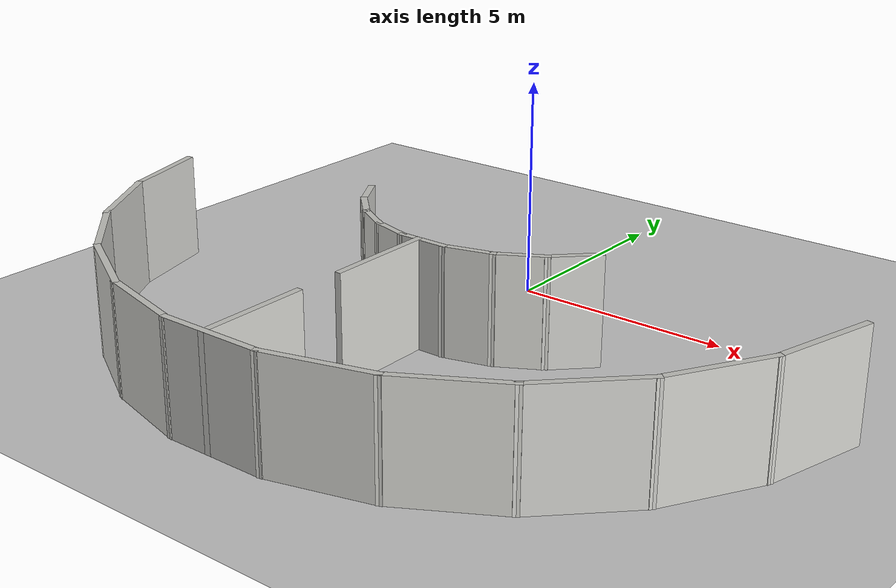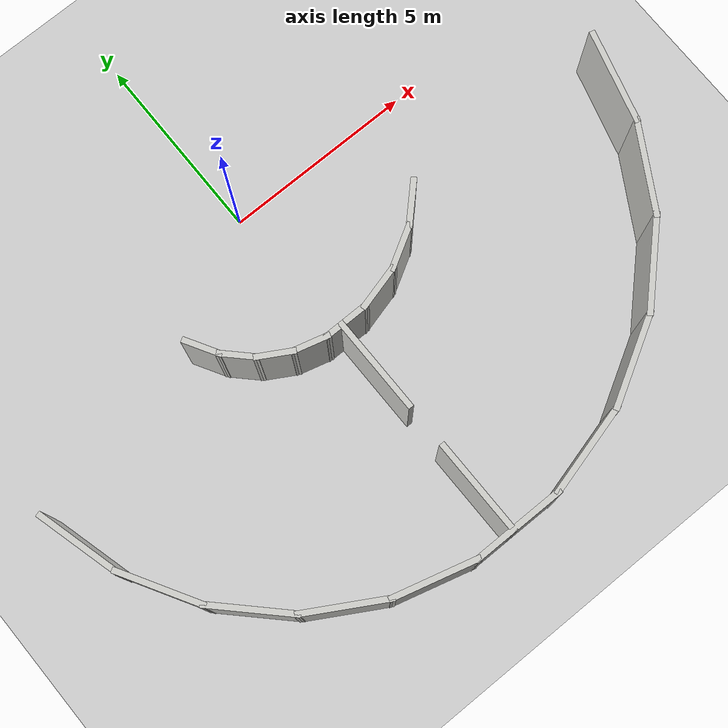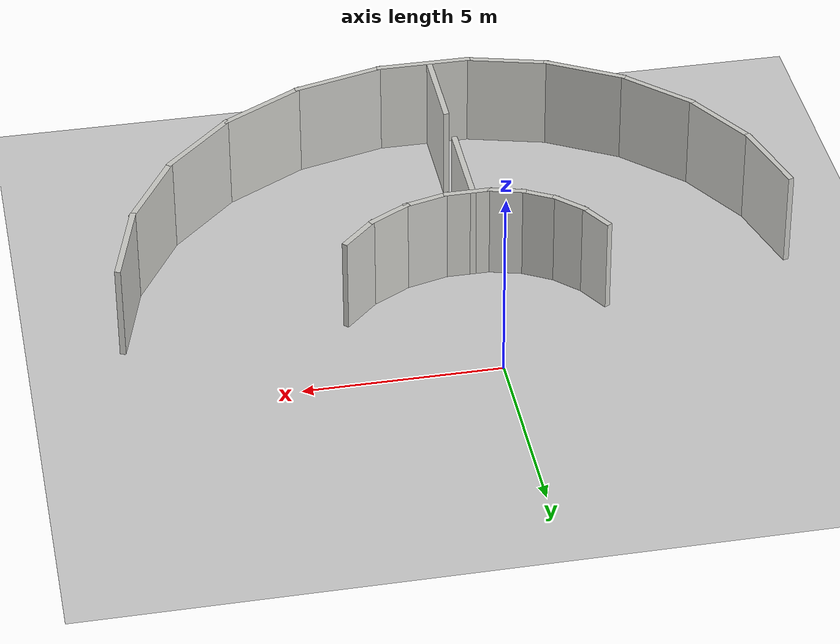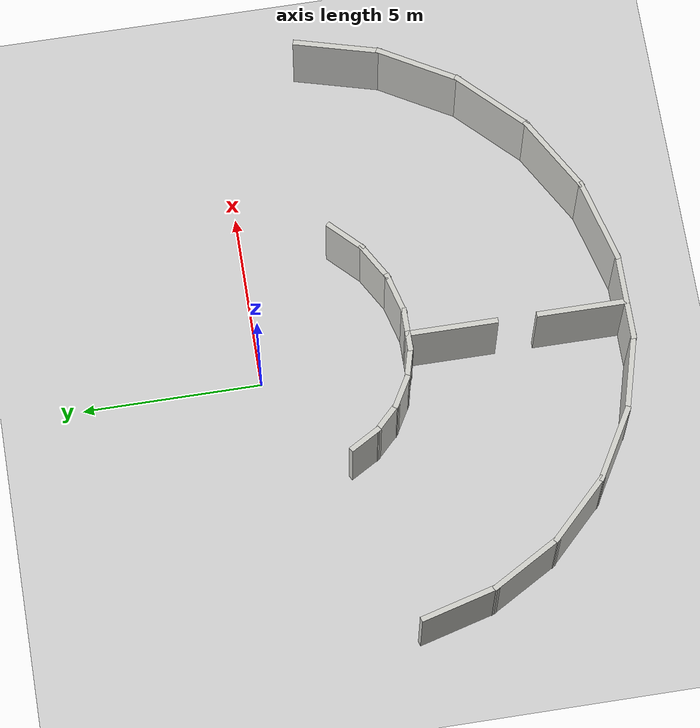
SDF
<sdf version="1.6">
 <world name="default">
  <model name="ground_plane">
   <static>1</static>
   <link name="link">
    <collision name="collision">
     <geometry><plane><normal>0 0 1</normal><size>100 100</size></plane></geometry>
     <surface>
      <contact><collide_bitmask>65535</collide_bitmask></contact>
      <friction><ode><mu>100</mu><mu2>50</mu2></ode></friction>
     </surface>
    </collision>
    <visual name="visual">
     <cast_shadows>0</cast_shadows>
     <geometry><plane><normal>0 0 1</normal><size>100 100</size></plane></geometry>
     <material>
      <script><uri>file://media/materials/scripts/gazebo.material</uri><name>Gazebo/Grey</name></script>
     </material>
    </visual>
   </link>
  </model>
  <model name="floor_plan">
   <link name="Wall_15">
    <pose>-8.24485 -3.54285 0 0 0 -1.30904</pose>
    <visual name="Wall_15_Visual">
     <pose>0 0 1.25 0 -0 0</pose>
     <geometry><box><size>2.25 0.15 2.5</size></box></geometry>
     <material>
      <script><uri>file://media/materials/scripts/gazebo.material</uri><name>Gazebo/CeilingTiled</name></script>
      <ambient>1 1 1 1</ambient>
      <shader type="pixel"/>
     </material>
     <meta><layer>0</layer></meta>
    </visual>
    <collision name="Wall_15_Collision">
     <pose>0 0 1.25 0 -0 0</pose>
     <geometry><box><size>2.25 0.15 2.5</size></box></geometry>
     <surface>
      <friction>
       <ode><mu>1</mu><mu2>1</mu2><fdir1>0 0 0</fdir1><slip1>0</slip1><slip2>0</slip2></ode>
       <torsional>
        <coefficient>1</coefficient>
        <patch_radius>0</patch_radius>
        <surface_radius>0</surface_radius>
        <use_patch_radius>1</use_patch_radius>
        <ode><slip>0</slip></ode>
       </torsional>
      </friction>
      <bounce><restitution_coefficient>0</restitution_coefficient><threshold>1e+06</threshold></bounce>
      <contact>
       <collide_without_contact>0</collide_without_contact>
       <collide_without_contact_bitmask>1</collide_without_contact_bitmask>
       <collide_bitmask>1</collide_bitmask>
       <ode>
        <soft_cfm>0</soft_cfm>
        <soft_erp>0.2</soft_erp>
        <kp>1e+13</kp>
        <kd>1</kd>
        <max_vel>0.01</max_vel>
        <min_depth>0</min_depth>
       </ode>
       <bullet>
        <split_impulse>1</split_impulse>
        <split_impulse_penetration_threshold>-0.01</split_impulse_penetration_threshold>
        <soft_cfm>0</soft_cfm>
        <soft_erp>0.2</soft_erp>
        <kp>1e+13</kp>
        <kd>1</kd>
       </bullet>
      </contact>
     </surface>
    </collision>
   </link>
   <link name="Wall_16">
    <pose>-7.44813 -5.46643 0 0 0 -1.0472</pose>
    <visual name="Wall_16_Visual">
     <pose>0 0 1.25 0 -0 0</pose>
     <geometry><box><size>2.25 0.15 2.5</size></box></geometry>
     <material>
      <script><uri>file://media/materials/scripts/gazebo.material</uri><name>Gazebo/CeilingTiled</name></script>
      <ambient>1 1 1 1</ambient>
      <shader type="pixel"/>
     </material>
     <meta><layer>0</layer></meta>
    </visual>
    <collision name="Wall_16_Collision">
     <pose>0 0 1.25 0 -0 0</pose>
     <geometry><box><size>2.25 0.15 2.5</size></box></geometry>
     <surface>
      <friction>
       <ode><mu>1</mu><mu2>1</mu2><fdir1>0 0 0</fdir1><slip1>0</slip1><slip2>0</slip2></ode>
       <torsional>
        <coefficient>1</coefficient>
        <patch_radius>0</patch_radius>
        <surface_radius>0</surface_radius>
        <use_patch_radius>1</use_patch_radius>
        <ode><slip>0</slip></ode>
       </torsional>
      </friction>
      <bounce><restitution_coefficient>0</restitution_coefficient><threshold>1e+06</threshold></bounce>
      <contact>
       <collide_without_contact>0</collide_without_contact>
       <collide_without_contact_bitmask>1</collide_without_contact_bitmask>
       <collide_bitmask>1</collide_bitmask>
       <ode>
        <soft_cfm>0</soft_cfm>
        <soft_erp>0.2</soft_erp>
        <kp>1e+13</kp>
        <kd>1</kd>
        <max_vel>0.01</max_vel>
        <min_depth>0</min_depth>
       </ode>
       <bullet>
        <split_impulse>1</split_impulse>
        <split_impulse_penetration_threshold>-0.01</split_impulse_penetration_threshold>
        <soft_cfm>0</soft_cfm>
        <soft_erp>0.2</soft_erp>
        <kp>1e+13</kp>
        <kd>1</kd>
       </bullet>
      </contact>
     </surface>
    </collision>
   </link>
   <link name="Wall_18">
    <pose>-6.18067 -7.11822 0 0 0 -0.785398</pose>
    <visual name="Wall_18_Visual">
     <pose>0 0 1.25 0 -0 0</pose>
     <geometry><box><size>2.25 0.15 2.5</size></box></geometry>
     <material>
      <script><uri>file://media/materials/scripts/gazebo.material</uri><name>Gazebo/CeilingTiled</name></script>
      <ambient>1 1 1 1</ambient>
      <shader type="pixel"/>
     </material>
     <meta><layer>0</layer></meta>
    </visual>
    <collision name="Wall_18_Collision">
     <pose>0 0 1.25 0 -0 0</pose>
     <geometry><box><size>2.25 0.15 2.5</size></box></geometry>
     <surface>
      <friction>
       <ode><mu>1</mu><mu2>1</mu2><fdir1>0 0 0</fdir1><slip1>0</slip1><slip2>0</slip2></ode>
       <torsional>
        <coefficient>1</coefficient>
        <patch_radius>0</patch_radius>
        <surface_radius>0</surface_radius>
        <use_patch_radius>1</use_patch_radius>
        <ode><slip>0</slip></ode>
       </torsional>
      </friction>
      <bounce><restitution_coefficient>0</restitution_coefficient><threshold>1e+06</threshold></bounce>
      <contact>
       <collide_without_contact>0</collide_without_contact>
       <collide_without_contact_bitmask>1</collide_without_contact_bitmask>
       <collide_bitmask>1</collide_bitmask>
       <ode>
        <soft_cfm>0</soft_cfm>
        <soft_erp>0.2</soft_erp>
        <kp>1e+13</kp>
        <kd>1</kd>
        <max_vel>0.01</max_vel>
        <min_depth>0</min_depth>
       </ode>
       <bullet>
        <split_impulse>1</split_impulse>
        <split_impulse_penetration_threshold>-0.01</split_impulse_penetration_threshold>
        <soft_cfm>0</soft_cfm>
        <soft_erp>0.2</soft_erp>
        <kp>1e+13</kp>
        <kd>1</kd>
       </bullet>
      </contact>
     </surface>
    </collision>
   </link>
   <link name="Wall_20">
    <pose>-4.52888 -8.38569 0 0 0 -0.523599</pose>
    <visual name="Wall_20_Visual">
     <pose>0 0 1.25 0 -0 0</pose>
     <geometry><box><size>2.25 0.15 2.5</size></box></geometry>
     <material>
      <script><uri>file://media/materials/scripts/gazebo.material</uri><name>Gazebo/CeilingTiled</name></script>
      <ambient>1 1 1 1</ambient>
      <shader type="pixel"/>
     </material>
     <meta><layer>0</layer></meta>
    </visual>
    <collision name="Wall_20_Collision">
     <pose>0 0 1.25 0 -0 0</pose>
     <geometry><box><size>2.25 0.15 2.5</size></box></geometry>
     <surface>
      <friction>
       <ode><mu>1</mu><mu2>1</mu2><fdir1>0 0 0</fdir1><slip1>0</slip1><slip2>0</slip2></ode>
       <torsional>
        <coefficient>1</coefficient>
        <patch_radius>0</patch_radius>
        <surface_radius>0</surface_radius>
        <use_patch_radius>1</use_patch_radius>
        <ode><slip>0</slip></ode>
       </torsional>
      </friction>
      <bounce><restitution_coefficient>0</restitution_coefficient><threshold>1e+06</threshold></bounce>
      <contact>
       <collide_without_contact>0</collide_without_contact>
       <collide_without_contact_bitmask>1</collide_without_contact_bitmask>
       <collide_bitmask>1</collide_bitmask>
       <ode>
        <soft_cfm>0</soft_cfm>
        <soft_erp>0.2</soft_erp>
        <kp>1e+13</kp>
        <kd>1</kd>
        <max_vel>0.01</max_vel>
        <min_depth>0</min_depth>
       </ode>
       <bullet>
        <split_impulse>1</split_impulse>
        <split_impulse_penetration_threshold>-0.01</split_impulse_penetration_threshold>
        <soft_cfm>0</soft_cfm>
        <soft_erp>0.2</soft_erp>
        <kp>1e+13</kp>
        <kd>1</kd>
       </bullet>
      </contact>
     </surface>
    </collision>
   </link>
   <link name="Wall_21">
    <pose>-2.60557 -9.18264 0 0 0 -0.262035</pose>
    <visual name="Wall_21_Visual">
     <pose>0 0 1.25 0 -0 0</pose>
     <geometry><box><size>2.25 0.15 2.5</size></box></geometry>
     <material>
      <script><uri>file://media/materials/scripts/gazebo.material</uri><name>Gazebo/CeilingTiled</name></script>
      <ambient>1 1 1 1</ambient>
      <shader type="pixel"/>
     </material>
     <meta><layer>0</layer></meta>
    </visual>
    <collision name="Wall_21_Collision">
     <pose>0 0 1.25 0 -0 0</pose>
     <geometry><box><size>2.25 0.15 2.5</size></box></geometry>
     <surface>
      <friction>
       <ode><mu>1</mu><mu2>1</mu2><fdir1>0 0 0</fdir1><slip1>0</slip1><slip2>0</slip2></ode>
       <torsional>
        <coefficient>1</coefficient>
        <patch_radius>0</patch_radius>
        <surface_radius>0</surface_radius>
        <use_patch_radius>1</use_patch_radius>
        <ode><slip>0</slip></ode>
       </torsional>
      </friction>
      <bounce><restitution_coefficient>0</restitution_coefficient><threshold>1e+06</threshold></bounce>
      <contact>
       <collide_without_contact>0</collide_without_contact>
       <collide_without_contact_bitmask>1</collide_without_contact_bitmask>
       <collide_bitmask>1</collide_bitmask>
       <ode>
        <soft_cfm>0</soft_cfm>
        <soft_erp>0.2</soft_erp>
        <kp>1e+13</kp>
        <kd>1</kd>
        <max_vel>0.01</max_vel>
        <min_depth>0</min_depth>
       </ode>
       <bullet>
        <split_impulse>1</split_impulse>
        <split_impulse_penetration_threshold>-0.01</split_impulse_penetration_threshold>
        <soft_cfm>0</soft_cfm>
        <soft_erp>0.2</soft_erp>
        <kp>1e+13</kp>
        <kd>1</kd>
       </bullet>
      </contact>
     </surface>
    </collision>
   </link>
   <link name="Wall_22">
    <pose>-0.416578 -9.45459 0 0 -0 0</pose>
    <visual name="Wall_22_Visual">
     <pose>0 0 1.25 0 -0 0</pose>
     <geometry><box><size>2.5 0.15 2.5</size></box></geometry>
     <material>
      <script><uri>file://media/materials/scripts/gazebo.material</uri><name>Gazebo/CeilingTiled</name></script>
      <ambient>1 1 1 1</ambient>
      <shader type="pixel"/>
     </material>
     <meta><layer>0</layer></meta>
    </visual>
    <collision name="Wall_22_Collision">
     <pose>0 0 1.25 0 -0 0</pose>
     <geometry><box><size>2.5 0.15 2.5</size></box></geometry>
     <surface>
      <friction>
       <ode><mu>1</mu><mu2>1</mu2><fdir1>0 0 0</fdir1><slip1>0</slip1><slip2>0</slip2></ode>
       <torsional>
        <coefficient>1</coefficient>
        <patch_radius>0</patch_radius>
        <surface_radius>0</surface_radius>
        <use_patch_radius>1</use_patch_radius>
        <ode><slip>0</slip></ode>
       </torsional>
      </friction>
      <bounce><restitution_coefficient>0</restitution_coefficient><threshold>1e+06</threshold></bounce>
      <contact>
       <collide_without_contact>0</collide_without_contact>
       <collide_without_contact_bitmask>1</collide_without_contact_bitmask>
       <collide_bitmask>1</collide_bitmask>
       <ode>
        <soft_cfm>0</soft_cfm>
        <soft_erp>0.2</soft_erp>
        <kp>1e+13</kp>
        <kd>1</kd>
        <max_vel>0.01</max_vel>
        <min_depth>0</min_depth>
       </ode>
       <bullet>
        <split_impulse>1</split_impulse>
        <split_impulse_penetration_threshold>-0.01</split_impulse_penetration_threshold>
        <soft_cfm>0</soft_cfm>
        <soft_erp>0.2</soft_erp>
        <kp>1e+13</kp>
        <kd>1</kd>
       </bullet>
      </contact>
     </surface>
    </collision>
   </link>
   <link name="Wall_23">
    <pose>1.89362 -9.15029 0 0 -0 0.261906</pose>
    <visual name="Wall_23_Visual">
     <pose>0 0 1.25 0 -0 0</pose>
     <geometry><box><size>2.5 0.15 2.5</size></box></geometry>
     <material>
      <script><uri>file://media/materials/scripts/gazebo.material</uri><name>Gazebo/CeilingTiled</name></script>
      <ambient>1 1 1 1</ambient>
      <shader type="pixel"/>
     </material>
     <meta><layer>0</layer></meta>
    </visual>
    <collision name="Wall_23_Collision">
     <pose>0 0 1.25 0 -0 0</pose>
     <geometry><box><size>2.5 0.15 2.5</size></box></geometry>
     <surface>
      <friction>
       <ode><mu>1</mu><mu2>1</mu2><fdir1>0 0 0</fdir1><slip1>0</slip1><slip2>0</slip2></ode>
       <torsional>
        <coefficient>1</coefficient>
        <patch_radius>0</patch_radius>
        <surface_radius>0</surface_radius>
        <use_patch_radius>1</use_patch_radius>
        <ode><slip>0</slip></ode>
       </torsional>
      </friction>
      <bounce><restitution_coefficient>0</restitution_coefficient><threshold>1e+06</threshold></bounce>
      <contact>
       <collide_without_contact>0</collide_without_contact>
       <collide_without_contact_bitmask>1</collide_without_contact_bitmask>
       <collide_bitmask>1</collide_bitmask>
       <ode>
        <soft_cfm>0</soft_cfm>
        <soft_erp>0.2</soft_erp>
        <kp>1e+13</kp>
        <kd>1</kd>
        <max_vel>0.01</max_vel>
        <min_depth>0</min_depth>
       </ode>
       <bullet>
        <split_impulse>1</split_impulse>
        <split_impulse_penetration_threshold>-0.01</split_impulse_penetration_threshold>
        <soft_cfm>0</soft_cfm>
        <soft_erp>0.2</soft_erp>
        <kp>1e+13</kp>
        <kd>1</kd>
       </bullet>
      </contact>
     </surface>
    </collision>
   </link>
   <link name="Wall_24">
    <pose>4.0464 -8.25848 0 0 -0 0.523599</pose>
    <visual name="Wall_24_Visual">
     <pose>0 0 1.25 0 -0 0</pose>
     <geometry><box><size>2.5 0.15 2.5</size></box></geometry>
     <material>
      <script><uri>file://media/materials/scripts/gazebo.material</uri><name>Gazebo/CeilingTiled</name></script>
      <ambient>1 1 1 1</ambient>
      <shader type="pixel"/>
     </material>
     <meta><layer>0</layer></meta>
    </visual>
    <collision name="Wall_24_Collision">
     <pose>0 0 1.25 0 -0 0</pose>
     <geometry><box><size>2.5 0.15 2.5</size></box></geometry>
     <surface>
      <friction>
       <ode><mu>1</mu><mu2>1</mu2><fdir1>0 0 0</fdir1><slip1>0</slip1><slip2>0</slip2></ode>
       <torsional>
        <coefficient>1</coefficient>
        <patch_radius>0</patch_radius>
        <surface_radius>0</surface_radius>
        <use_patch_radius>1</use_patch_radius>
        <ode><slip>0</slip></ode>
       </torsional>
      </friction>
      <bounce><restitution_coefficient>0</restitution_coefficient><threshold>1e+06</threshold></bounce>
      <contact>
       <collide_without_contact>0</collide_without_contact>
       <collide_without_contact_bitmask>1</collide_without_contact_bitmask>
       <collide_bitmask>1</collide_bitmask>
       <ode>
        <soft_cfm>0</soft_cfm>
        <soft_erp>0.2</soft_erp>
        <kp>1e+13</kp>
        <kd>1</kd>
        <max_vel>0.01</max_vel>
        <min_depth>0</min_depth>
       </ode>
       <bullet>
        <split_impulse>1</split_impulse>
        <split_impulse_penetration_threshold>-0.01</split_impulse_penetration_threshold>
        <soft_cfm>0</soft_cfm>
        <soft_erp>0.2</soft_erp>
        <kp>1e+13</kp>
        <kd>1</kd>
       </bullet>
      </contact>
     </surface>
    </collision>
   </link>
   <link name="Wall_26">
    <pose>5.89483 -6.84013 0 0 -0 0.785398</pose>
    <visual name="Wall_26_Visual">
     <pose>0 0 1.25 0 -0 0</pose>
     <geometry><box><size>2.5 0.15 2.5</size></box></geometry>
     <material>
      <script><uri>file://media/materials/scripts/gazebo.material</uri><name>Gazebo/CeilingTiled</name></script>
      <ambient>1 1 1 1</ambient>
      <shader type="pixel"/>
     </material>
     <meta><layer>0</layer></meta>
    </visual>
    <collision name="Wall_26_Collision">
     <pose>0 0 1.25 0 -0 0</pose>
     <geometry><box><size>2.5 0.15 2.5</size></box></geometry>
     <surface>
      <friction>
       <ode><mu>1</mu><mu2>1</mu2><fdir1>0 0 0</fdir1><slip1>0</slip1><slip2>0</slip2></ode>
       <torsional>
        <coefficient>1</coefficient>
        <patch_radius>0</patch_radius>
        <surface_radius>0</surface_radius>
        <use_patch_radius>1</use_patch_radius>
        <ode><slip>0</slip></ode>
       </torsional>
      </friction>
      <bounce><restitution_coefficient>0</restitution_coefficient><threshold>1e+06</threshold></bounce>
      <contact>
       <collide_without_contact>0</collide_without_contact>
       <collide_without_contact_bitmask>1</collide_without_contact_bitmask>
       <collide_bitmask>1</collide_bitmask>
       <ode>
        <soft_cfm>0</soft_cfm>
        <soft_erp>0.2</soft_erp>
        <kp>1e+13</kp>
        <kd>1</kd>
        <max_vel>0.01</max_vel>
        <min_depth>0</min_depth>
       </ode>
       <bullet>
        <split_impulse>1</split_impulse>
        <split_impulse_penetration_threshold>-0.01</split_impulse_penetration_threshold>
        <soft_cfm>0</soft_cfm>
        <soft_erp>0.2</soft_erp>
        <kp>1e+13</kp>
        <kd>1</kd>
       </bullet>
      </contact>
     </surface>
    </collision>
   </link>
   <link name="Wall_28">
    <pose>7.31318 -4.9917 0 0 -0 1.0472</pose>
    <visual name="Wall_28_Visual">
     <pose>0 0 1.25 0 -0 0</pose>
     <geometry><box><size>2.5 0.15 2.5</size></box></geometry>
     <material>
      <script><uri>file://media/materials/scripts/gazebo.material</uri><name>Gazebo/CeilingTiled</name></script>
      <ambient>1 1 1 1</ambient>
      <shader type="pixel"/>
     </material>
     <meta><layer>0</layer></meta>
    </visual>
    <collision name="Wall_28_Collision">
     <pose>0 0 1.25 0 -0 0</pose>
     <geometry><box><size>2.5 0.15 2.5</size></box></geometry>
     <surface>
      <friction>
       <ode><mu>1</mu><mu2>1</mu2><fdir1>0 0 0</fdir1><slip1>0</slip1><slip2>0</slip2></ode>
       <torsional>
        <coefficient>1</coefficient>
        <patch_radius>0</patch_radius>
        <surface_radius>0</surface_radius>
        <use_patch_radius>1</use_patch_radius>
        <ode><slip>0</slip></ode>
       </torsional>
      </friction>
      <bounce><restitution_coefficient>0</restitution_coefficient><threshold>1e+06</threshold></bounce>
      <contact>
       <collide_without_contact>0</collide_without_contact>
       <collide_without_contact_bitmask>1</collide_without_contact_bitmask>
       <collide_bitmask>1</collide_bitmask>
       <ode>
        <soft_cfm>0</soft_cfm>
        <soft_erp>0.2</soft_erp>
        <kp>1e+13</kp>
        <kd>1</kd>
        <max_vel>0.01</max_vel>
        <min_depth>0</min_depth>
       </ode>
       <bullet>
        <split_impulse>1</split_impulse>
        <split_impulse_penetration_threshold>-0.01</split_impulse_penetration_threshold>
        <soft_cfm>0</soft_cfm>
        <soft_erp>0.2</soft_erp>
        <kp>1e+13</kp>
        <kd>1</kd>
       </bullet>
      </contact>
     </surface>
    </collision>
   </link>
   <link name="Wall_29">
    <pose>8.20855 -2.83935 0 0 -0 1.30587</pose>
    <visual name="Wall_29_Visual">
     <pose>0 0 1.25 0 -0 0</pose>
     <geometry><box><size>2.50157 0.15 2.5</size></box></geometry>
     <material>
      <script><uri>file://media/materials/scripts/gazebo.material</uri><name>Gazebo/CeilingTiled</name></script>
      <ambient>1 1 1 1</ambient>
      <shader type="pixel"/>
     </material>
     <meta><layer>0</layer></meta>
    </visual>
    <collision name="Wall_29_Collision">
     <pose>0 0 1.25 0 -0 0</pose>
     <geometry><box><size>2.50157 0.15 2.5</size></box></geometry>
     <surface>
      <friction>
       <ode><mu>1</mu><mu2>1</mu2><fdir1>0 0 0</fdir1><slip1>0</slip1><slip2>0</slip2></ode>
       <torsional>
        <coefficient>1</coefficient>
        <patch_radius>0</patch_radius>
        <surface_radius>0</surface_radius>
        <use_patch_radius>1</use_patch_radius>
        <ode><slip>0</slip></ode>
       </torsional>
      </friction>
      <bounce><restitution_coefficient>0</restitution_coefficient><threshold>1e+06</threshold></bounce>
      <contact>
       <collide_without_contact>0</collide_without_contact>
       <collide_without_contact_bitmask>1</collide_without_contact_bitmask>
       <collide_bitmask>1</collide_bitmask>
       <ode>
        <soft_cfm>0</soft_cfm>
        <soft_erp>0.2</soft_erp>
        <kp>1e+13</kp>
        <kd>1</kd>
        <max_vel>0.01</max_vel>
        <min_depth>0</min_depth>
       </ode>
       <bullet>
        <split_impulse>1</split_impulse>
        <split_impulse_penetration_threshold>-0.01</split_impulse_penetration_threshold>
        <soft_cfm>0</soft_cfm>
        <soft_erp>0.2</soft_erp>
        <kp>1e+13</kp>
        <kd>1</kd>
       </bullet>
      </contact>
     </surface>
    </collision>
   </link>
   <link name="Wall_53">
    <pose>-3.36208 -1.79169 0 0 0 -1.0472</pose>
    <visual name="Wall_53_Visual">
     <pose>0 0 1.25 0 -0 0</pose>
     <geometry><box><size>1 0.15 2.5</size></box></geometry>
     <material>
      <script><uri>file://media/materials/scripts/gazebo.material</uri><name>Gazebo/CeilingTiled</name></script>
      <ambient>1 1 1 1</ambient>
      <shader type="pixel"/>
     </material>
     <meta><layer>0</layer></meta>
    </visual>
    <collision name="Wall_53_Collision">
     <pose>0 0 1.25 0 -0 0</pose>
     <geometry><box><size>1 0.15 2.5</size></box></geometry>
     <surface>
      <friction>
       <ode><mu>1</mu><mu2>1</mu2><fdir1>0 0 0</fdir1><slip1>0</slip1><slip2>0</slip2></ode>
       <torsional>
        <coefficient>1</coefficient>
        <patch_radius>0</patch_radius>
        <surface_radius>0</surface_radius>
        <use_patch_radius>1</use_patch_radius>
        <ode><slip>0</slip></ode>
       </torsional>
      </friction>
      <bounce><restitution_coefficient>0</restitution_coefficient><threshold>1e+06</threshold></bounce>
      <contact>
       <collide_without_contact>0</collide_without_contact>
       <collide_without_contact_bitmask>1</collide_without_contact_bitmask>
       <collide_bitmask>1</collide_bitmask>
       <ode>
        <soft_cfm>0</soft_cfm>
        <soft_erp>0.2</soft_erp>
        <kp>1e+13</kp>
        <kd>1</kd>
        <max_vel>0.01</max_vel>
        <min_depth>0</min_depth>
       </ode>
       <bullet>
        <split_impulse>1</split_impulse>
        <split_impulse_penetration_threshold>-0.01</split_impulse_penetration_threshold>
        <soft_cfm>0</soft_cfm>
        <soft_erp>0.2</soft_erp>
        <kp>1e+13</kp>
        <kd>1</kd>
       </bullet>
      </contact>
     </surface>
    </collision>
   </link>
   <link name="Wall_54">
    <pose>-2.84906 -2.46027 0 0 0 -0.785398</pose>
    <visual name="Wall_54_Visual">
     <pose>0 0 1.25 0 -0 0</pose>
     <geometry><box><size>1 0.15 2.5</size></box></geometry>
     <material>
      <script><uri>file://media/materials/scripts/gazebo.material</uri><name>Gazebo/CeilingTiled</name></script>
      <ambient>1 1 1 1</ambient>
      <shader type="pixel"/>
     </material>
     <meta><layer>0</layer></meta>
    </visual>
    <collision name="Wall_54_Collision">
     <pose>0 0 1.25 0 -0 0</pose>
     <geometry><box><size>1 0.15 2.5</size></box></geometry>
     <surface>
      <friction>
       <ode><mu>1</mu><mu2>1</mu2><fdir1>0 0 0</fdir1><slip1>0</slip1><slip2>0</slip2></ode>
       <torsional>
        <coefficient>1</coefficient>
        <patch_radius>0</patch_radius>
        <surface_radius>0</surface_radius>
        <use_patch_radius>1</use_patch_radius>
        <ode><slip>0</slip></ode>
       </torsional>
      </friction>
      <bounce><restitution_coefficient>0</restitution_coefficient><threshold>1e+06</threshold></bounce>
      <contact>
       <collide_without_contact>0</collide_without_contact>
       <collide_without_contact_bitmask>1</collide_without_contact_bitmask>
       <collide_bitmask>1</collide_bitmask>
       <ode>
        <soft_cfm>0</soft_cfm>
        <soft_erp>0.2</soft_erp>
        <kp>1e+13</kp>
        <kd>1</kd>
        <max_vel>0.01</max_vel>
        <min_depth>0</min_depth>
       </ode>
       <bullet>
        <split_impulse>1</split_impulse>
        <split_impulse_penetration_threshold>-0.01</split_impulse_penetration_threshold>
        <soft_cfm>0</soft_cfm>
        <soft_erp>0.2</soft_erp>
        <kp>1e+13</kp>
        <kd>1</kd>
       </bullet>
      </contact>
     </surface>
    </collision>
   </link>
   <link name="Wall_55">
    <pose>-2.18048 -2.97329 0 0 0 -0.523599</pose>
    <visual name="Wall_55_Visual">
     <pose>0 0 1.25 0 -0 0</pose>
     <geometry><box><size>1 0.15 2.5</size></box></geometry>
     <material>
      <script><uri>file://media/materials/scripts/gazebo.material</uri><name>Gazebo/CeilingTiled</name></script>
      <ambient>1 1 1 1</ambient>
      <shader type="pixel"/>
     </material>
     <meta><layer>0</layer></meta>
    </visual>
    <collision name="Wall_55_Collision">
     <pose>0 0 1.25 0 -0 0</pose>
     <geometry><box><size>1 0.15 2.5</size></box></geometry>
     <surface>
      <friction>
       <ode><mu>1</mu><mu2>1</mu2><fdir1>0 0 0</fdir1><slip1>0</slip1><slip2>0</slip2></ode>
       <torsional>
        <coefficient>1</coefficient>
        <patch_radius>0</patch_radius>
        <surface_radius>0</surface_radius>
        <use_patch_radius>1</use_patch_radius>
        <ode><slip>0</slip></ode>
       </torsional>
      </friction>
      <bounce><restitution_coefficient>0</restitution_coefficient><threshold>1e+06</threshold></bounce>
      <contact>
       <collide_without_contact>0</collide_without_contact>
       <collide_without_contact_bitmask>1</collide_without_contact_bitmask>
       <collide_bitmask>1</collide_bitmask>
       <ode>
        <soft_cfm>0</soft_cfm>
        <soft_erp>0.2</soft_erp>
        <kp>1e+13</kp>
        <kd>1</kd>
        <max_vel>0.01</max_vel>
        <min_depth>0</min_depth>
       </ode>
       <bullet>
        <split_impulse>1</split_impulse>
        <split_impulse_penetration_threshold>-0.01</split_impulse_penetration_threshold>
        <soft_cfm>0</soft_cfm>
        <soft_erp>0.2</soft_erp>
        <kp>1e+13</kp>
        <kd>1</kd>
       </bullet>
      </contact>
     </surface>
    </collision>
   </link>
   <link name="Wall_68">
    <pose>-1.4019 -3.29579 0 0 0 -0.261799</pose>
    <visual name="Wall_68_Visual">
     <pose>0 0 1.25 0 -0 0</pose>
     <geometry><box><size>1 0.15 2.5</size></box></geometry>
     <material>
      <script><uri>file://media/materials/scripts/gazebo.material</uri><name>Gazebo/CeilingTiled</name></script>
      <ambient>1 1 1 1</ambient>
      <shader type="pixel"/>
     </material>
     <meta><layer>0</layer></meta>
    </visual>
    <collision name="Wall_68_Collision">
     <pose>0 0 1.25 0 -0 0</pose>
     <geometry><box><size>1 0.15 2.5</size></box></geometry>
     <surface>
      <friction>
       <ode><mu>1</mu><mu2>1</mu2><fdir1>0 0 0</fdir1><slip1>0</slip1><slip2>0</slip2></ode>
       <torsional>
        <coefficient>1</coefficient>
        <patch_radius>0</patch_radius>
        <surface_radius>0</surface_radius>
        <use_patch_radius>1</use_patch_radius>
        <ode><slip>0</slip></ode>
       </torsional>
      </friction>
      <bounce><restitution_coefficient>0</restitution_coefficient><threshold>1e+06</threshold></bounce>
      <contact>
       <collide_without_contact>0</collide_without_contact>
       <collide_without_contact_bitmask>1</collide_without_contact_bitmask>
       <collide_bitmask>1</collide_bitmask>
       <ode>
        <soft_cfm>0</soft_cfm>
        <soft_erp>0.2</soft_erp>
        <kp>1e+13</kp>
        <kd>1</kd>
        <max_vel>0.01</max_vel>
        <min_depth>0</min_depth>
       </ode>
       <bullet>
        <split_impulse>1</split_impulse>
        <split_impulse_penetration_threshold>-0.01</split_impulse_penetration_threshold>
        <soft_cfm>0</soft_cfm>
        <soft_erp>0.2</soft_erp>
        <kp>1e+13</kp>
        <kd>1</kd>
       </bullet>
      </contact>
     </surface>
    </collision>
   </link>
   <link name="Wall_71">
    <pose>-0.441382 -3.40579 0 0 -0 0</pose>
    <visual name="Wall_71_Visual">
     <pose>0 0 1.25 0 -0 0</pose>
     <geometry><box><size>1.25 0.15 2.5</size></box></geometry>
     <material>
      <script><uri>file://media/materials/scripts/gazebo.material</uri><name>Gazebo/CeilingTiled</name></script>
      <ambient>1 1 1 1</ambient>
      <shader type="pixel"/>
     </material>
     <meta><layer>0</layer></meta>
    </visual>
    <collision name="Wall_71_Collision">
     <pose>0 0 1.25 0 -0 0</pose>
     <geometry><box><size>1.25 0.15 2.5</size></box></geometry>
     <surface>
      <friction>
       <ode><mu>1</mu><mu2>1</mu2><fdir1>0 0 0</fdir1><slip1>0</slip1><slip2>0</slip2></ode>
       <torsional>
        <coefficient>1</coefficient>
        <patch_radius>0</patch_radius>
        <surface_radius>0</surface_radius>
        <use_patch_radius>1</use_patch_radius>
        <ode><slip>0</slip></ode>
       </torsional>
      </friction>
      <bounce><restitution_coefficient>0</restitution_coefficient><threshold>1e+06</threshold></bounce>
      <contact>
       <collide_without_contact>0</collide_without_contact>
       <collide_without_contact_bitmask>1</collide_without_contact_bitmask>
       <collide_bitmask>1</collide_bitmask>
       <ode>
        <soft_cfm>0</soft_cfm>
        <soft_erp>0.2</soft_erp>
        <kp>1e+13</kp>
        <kd>1</kd>
        <max_vel>0.01</max_vel>
        <min_depth>0</min_depth>
       </ode>
       <bullet>
        <split_impulse>1</split_impulse>
        <split_impulse_penetration_threshold>-0.01</split_impulse_penetration_threshold>
        <soft_cfm>0</soft_cfm>
        <soft_erp>0.2</soft_erp>
        <kp>1e+13</kp>
        <kd>1</kd>
       </bullet>
      </contact>
     </surface>
    </collision>
   </link>
   <link name="Wall_72">
    <pose>0.639877 -3.26344 0 0 -0 0.261799</pose>
    <visual name="Wall_72_Visual">
     <pose>0 0 1.25 0 -0 0</pose>
     <geometry><box><size>1.25 0.15 2.5</size></box></geometry>
     <material>
      <script><uri>file://media/materials/scripts/gazebo.material</uri><name>Gazebo/CeilingTiled</name></script>
      <ambient>1 1 1 1</ambient>
      <shader type="pixel"/>
     </material>
     <meta><layer>0</layer></meta>
    </visual>
    <collision name="Wall_72_Collision">
     <pose>0 0 1.25 0 -0 0</pose>
     <geometry><box><size>1.25 0.15 2.5</size></box></geometry>
     <surface>
      <friction>
       <ode><mu>1</mu><mu2>1</mu2><fdir1>0 0 0</fdir1><slip1>0</slip1><slip2>0</slip2></ode>
       <torsional>
        <coefficient>1</coefficient>
        <patch_radius>0</patch_radius>
        <surface_radius>0</surface_radius>
        <use_patch_radius>1</use_patch_radius>
        <ode><slip>0</slip></ode>
       </torsional>
      </friction>
      <bounce><restitution_coefficient>0</restitution_coefficient><threshold>1e+06</threshold></bounce>
      <contact>
       <collide_without_contact>0</collide_without_contact>
       <collide_without_contact_bitmask>1</collide_without_contact_bitmask>
       <collide_bitmask>1</collide_bitmask>
       <ode>
        <soft_cfm>0</soft_cfm>
        <soft_erp>0.2</soft_erp>
        <kp>1e+13</kp>
        <kd>1</kd>
        <max_vel>0.01</max_vel>
        <min_depth>0</min_depth>
       </ode>
       <bullet>
        <split_impulse>1</split_impulse>
        <split_impulse_penetration_threshold>-0.01</split_impulse_penetration_threshold>
        <soft_cfm>0</soft_cfm>
        <soft_erp>0.2</soft_erp>
        <kp>1e+13</kp>
        <kd>1</kd>
       </bullet>
      </contact>
     </surface>
    </collision>
   </link>
   <link name="Wall_73">
    <pose>1.64745 -2.84609 0 0 -0 0.523599</pose>
    <visual name="Wall_73_Visual">
     <pose>0 0 1.25 0 -0 0</pose>
     <geometry><box><size>1.25 0.15 2.5</size></box></geometry>
     <material>
      <script><uri>file://media/materials/scripts/gazebo.material</uri><name>Gazebo/CeilingTiled</name></script>
      <ambient>1 1 1 1</ambient>
      <shader type="pixel"/>
     </material>
     <meta><layer>0</layer></meta>
    </visual>
    <collision name="Wall_73_Collision">
     <pose>0 0 1.25 0 -0 0</pose>
     <geometry><box><size>1.25 0.15 2.5</size></box></geometry>
     <surface>
      <friction>
       <ode><mu>1</mu><mu2>1</mu2><fdir1>0 0 0</fdir1><slip1>0</slip1><slip2>0</slip2></ode>
       <torsional>
        <coefficient>1</coefficient>
        <patch_radius>0</patch_radius>
        <surface_radius>0</surface_radius>
        <use_patch_radius>1</use_patch_radius>
        <ode><slip>0</slip></ode>
       </torsional>
      </friction>
      <bounce><restitution_coefficient>0</restitution_coefficient><threshold>1e+06</threshold></bounce>
      <contact>
       <collide_without_contact>0</collide_without_contact>
       <collide_without_contact_bitmask>1</collide_without_contact_bitmask>
       <collide_bitmask>1</collide_bitmask>
       <ode>
        <soft_cfm>0</soft_cfm>
        <soft_erp>0.2</soft_erp>
        <kp>1e+13</kp>
        <kd>1</kd>
        <max_vel>0.01</max_vel>
        <min_depth>0</min_depth>
       </ode>
       <bullet>
        <split_impulse>1</split_impulse>
        <split_impulse_penetration_threshold>-0.01</split_impulse_penetration_threshold>
        <soft_cfm>0</soft_cfm>
        <soft_erp>0.2</soft_erp>
        <kp>1e+13</kp>
        <kd>1</kd>
       </bullet>
      </contact>
     </surface>
    </collision>
   </link>
   <link name="Wall_74">
    <pose>2.51267 -2.18218 0 0 -0 0.785398</pose>
    <visual name="Wall_74_Visual">
     <pose>0 0 1.25 0 -0 0</pose>
     <geometry><box><size>1.25 0.15 2.5</size></box></geometry>
     <material>
      <script><uri>file://media/materials/scripts/gazebo.material</uri><name>Gazebo/CeilingTiled</name></script>
      <ambient>1 1 1 1</ambient>
      <shader type="pixel"/>
     </material>
     <meta><layer>0</layer></meta>
    </visual>
    <collision name="Wall_74_Collision">
     <pose>0 0 1.25 0 -0 0</pose>
     <geometry><box><size>1.25 0.15 2.5</size></box></geometry>
     <surface>
      <friction>
       <ode><mu>1</mu><mu2>1</mu2><fdir1>0 0 0</fdir1><slip1>0</slip1><slip2>0</slip2></ode>
       <torsional>
        <coefficient>1</coefficient>
        <patch_radius>0</patch_radius>
        <surface_radius>0</surface_radius>
        <use_patch_radius>1</use_patch_radius>
        <ode><slip>0</slip></ode>
       </torsional>
      </friction>
      <bounce><restitution_coefficient>0</restitution_coefficient><threshold>1e+06</threshold></bounce>
      <contact>
       <collide_without_contact>0</collide_without_contact>
       <collide_without_contact_bitmask>1</collide_without_contact_bitmask>
       <collide_bitmask>1</collide_bitmask>
       <ode>
        <soft_cfm>0</soft_cfm>
        <soft_erp>0.2</soft_erp>
        <kp>1e+13</kp>
        <kd>1</kd>
        <max_vel>0.01</max_vel>
        <min_depth>0</min_depth>
       </ode>
       <bullet>
        <split_impulse>1</split_impulse>
        <split_impulse_penetration_threshold>-0.01</split_impulse_penetration_threshold>
        <soft_cfm>0</soft_cfm>
        <soft_erp>0.2</soft_erp>
        <kp>1e+13</kp>
        <kd>1</kd>
       </bullet>
      </contact>
     </surface>
    </collision>
   </link>
   <link name="Wall_86">
    <pose>-0.565578 -8.24559 0 0 -0 1.5708</pose>
    <visual name="Wall_86_Visual">
     <pose>0 0 1.25 0 -0 0</pose>
     <geometry><box><size>2.568 0.15 2.5</size></box></geometry>
     <material>
      <script><uri>file://media/materials/scripts/gazebo.material</uri><name>Gazebo/CeilingTiled</name></script>
      <ambient>1 1 1 1</ambient>
      <shader type="pixel"/>
     </material>
     <meta><layer>0</layer></meta>
    </visual>
    <collision name="Wall_86_Collision">
     <pose>0 0 1.25 0 -0 0</pose>
     <geometry><box><size>2.568 0.15 2.5</size></box></geometry>
     <surface>
      <friction>
       <ode><mu>1</mu><mu2>1</mu2><fdir1>0 0 0</fdir1><slip1>0</slip1><slip2>0</slip2></ode>
       <torsional>
        <coefficient>1</coefficient>
        <patch_radius>0</patch_radius>
        <surface_radius>0</surface_radius>
        <use_patch_radius>1</use_patch_radius>
        <ode><slip>0</slip></ode>
       </torsional>
      </friction>
      <bounce><restitution_coefficient>0</restitution_coefficient><threshold>1e+06</threshold></bounce>
      <contact>
       <collide_without_contact>0</collide_without_contact>
       <collide_without_contact_bitmask>1</collide_without_contact_bitmask>
       <collide_bitmask>1</collide_bitmask>
       <ode>
        <soft_cfm>0</soft_cfm>
        <soft_erp>0.2</soft_erp>
        <kp>1e+13</kp>
        <kd>1</kd>
        <max_vel>0.01</max_vel>
        <min_depth>0</min_depth>
       </ode>
       <bullet>
        <split_impulse>1</split_impulse>
        <split_impulse_penetration_threshold>-0.01</split_impulse_penetration_threshold>
        <soft_cfm>0</soft_cfm>
        <soft_erp>0.2</soft_erp>
        <kp>1e+13</kp>
        <kd>1</kd>
       </bullet>
      </contact>
     </surface>
    </collision>
   </link>
   <link name="Wall_88">
    <pose>-0.565578 -4.61459 0 0 0 -1.5708</pose>
    <visual name="Wall_88_Visual">
     <pose>0 0 1.25 0 -0 0</pose>
     <geometry><box><size>2.568 0.15 2.5</size></box></geometry>
     <material>
      <script><uri>file://media/materials/scripts/gazebo.material</uri><name>Gazebo/CeilingTiled</name></script>
      <ambient>1 1 1 1</ambient>
      <shader type="pixel"/>
     </material>
     <meta><layer>0</layer></meta>
    </visual>
    <collision name="Wall_88_Collision">
     <pose>0 0 1.25 0 -0 0</pose>
     <geometry><box><size>2.568 0.15 2.5</size></box></geometry>
     <surface>
      <friction>
       <ode><mu>1</mu><mu2>1</mu2><fdir1>0 0 0</fdir1><slip1>0</slip1><slip2>0</slip2></ode>
       <torsional>
        <coefficient>1</coefficient>
        <patch_radius>0</patch_radius>
        <surface_radius>0</surface_radius>
        <use_patch_radius>1</use_patch_radius>
        <ode><slip>0</slip></ode>
       </torsional>
      </friction>
      <bounce><restitution_coefficient>0</restitution_coefficient><threshold>1e+06</threshold></bounce>
      <contact>
       <collide_without_contact>0</collide_without_contact>
       <collide_without_contact_bitmask>1</collide_without_contact_bitmask>
       <collide_bitmask>1</collide_bitmask>
       <ode>
        <soft_cfm>0</soft_cfm>
        <soft_erp>0.2</soft_erp>
        <kp>1e+13</kp>
        <kd>1</kd>
        <max_vel>0.01</max_vel>
        <min_depth>0</min_depth>
       </ode>
       <bullet>
        <split_impulse>1</split_impulse>
        <split_impulse_penetration_threshold>-0.01</split_impulse_penetration_threshold>
        <soft_cfm>0</soft_cfm>
        <soft_erp>0.2</soft_erp>
        <kp>1e+13</kp>
        <kd>1</kd>
       </bullet>
      </contact>
     </surface>
    </collision>
   </link>
   <static>1</static>
   <pose>0.565578 -0.672409 0 0 -0 0</pose>
  </model>
 </world>
</sdf>
